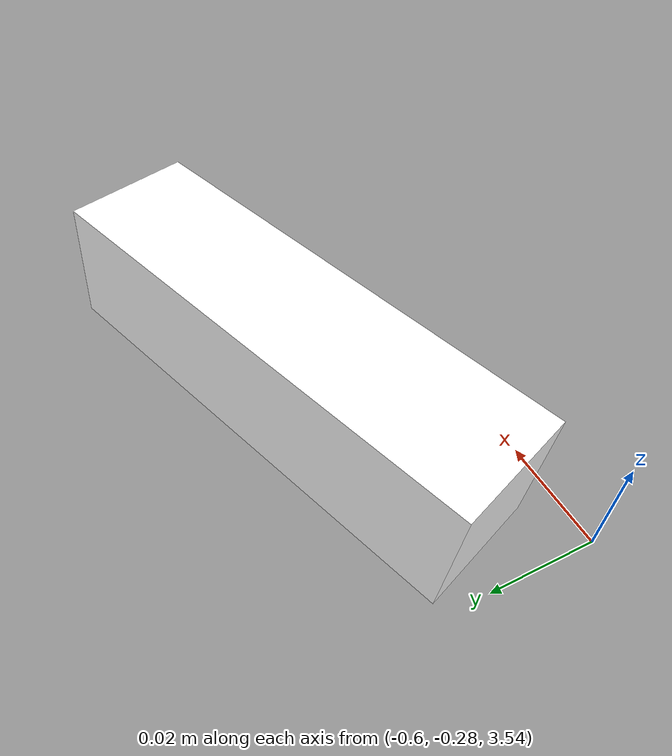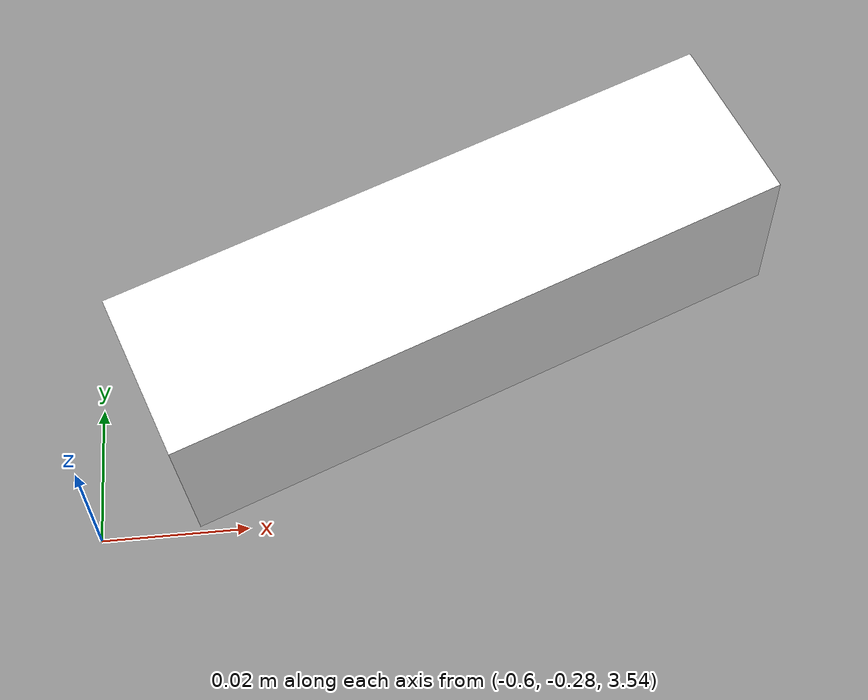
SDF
<?xml version='1.0' encoding='ASCII'?>
<sdf version='1.4'>
  <world name='office_construction'>
    <physics type='ode'>
      <max_step_size>0.003</max_step_size>
      <real_time_factor>1.0</real_time_factor>
      <real_time_update_rate>1000</real_time_update_rate>
      <gravity>0 0 -9.8</gravity>
    </physics>
    <plugin name='gz::sim::systems::Physics' filename='libgz-sim-physics-system.so'/>
    <plugin name='gz::sim::systems::UserCommands' filename='libgz-sim-user-commands-system.so'/>
    <plugin name='gz::sim::systems::SceneBroadcaster' filename='libgz-sim-scene-broadcaster-system.so'/>
    <plugin name="gz::sim::systems::Sensors" filename="libgz-sim-sensors-system.so">
      <render_engine>ogre2</render_engine>
    </plugin>
    <plugin name="gz::sim::systems::Imu" filename="libgz-sim-imu-system.so"/>
    <plugin name="gz::sim::systems::NavSat" filename="libgz-sim-navsat-system.so"/>
    <plugin name="gz::sim::systems::ForceTorque" filename="libgz-sim-forcetorque-system.so"/>

    <scene>
      <ambient>1 1 1 1</ambient>
      <background>0.3 0.7 0.9 1</background>
      <shadows>0</shadows>
      <grid>false</grid>
      <sky>
        <clouds>
          <speed>12</speed>
        </clouds>
      </sky>
      <shadows>1</shadows>
    </scene>
    <light name='sun' type='directional'>
      <cast_shadows>1</cast_shadows>
      <pose>0 0 10 0 -0 0</pose>
      <diffuse>1.0 1.0 1.0 1</diffuse>
      <specular>0.2 0.2 0.2 1</specular>
      <attenuation>
        <range>1000</range>
        <constant>0.9</constant>
        <linear>0.01</linear>
        <quadratic>0.001</quadratic>
      </attenuation>
      <direction>-0.5 0.5 -1.0</direction>
    </light>

    <!-- Origin placed somewhere near Clearpath's office in Waterloo, ON, Canada -->
    <spherical_coordinates>
      <surface_model>EARTH_WGS84</surface_model>
      <latitude_deg>43.500720</latitude_deg>
      <longitude_deg>-80.546793</longitude_deg>
      <elevation>329</elevation>
      <heading_deg>0</heading_deg>
    </spherical_coordinates>

    <model name='ground_plane'>
      <pose>0 0 0 0 0 0</pose>
      <static>true</static>
      <link name='ground_link'>
        <collision name='ground_collision'>
          <geometry>
            <plane>
              <normal>0 0 1</normal>
              <size>1000 1000</size>
            </plane>
          </geometry>
          <surface>
            <friction>
              <ode>
                <mu>2.0</mu>
                <mu2>2.0</mu2>
              </ode>
            </friction>
          </surface>
        </collision>
        <visual name='ground_visual'>
          <geometry>
            <plane>
              <normal>0 0 1</normal>
              <size>1000 1000</size>
            </plane>
          </geometry>
        </visual>
      </link>
    </model>

    <model name="fixed_realsense_d435">
      <static>true</static>

      <!-- world pose: x y z roll pitch yaw -->
      <!-- pitch = -pi/2 makes it look down -->
      <!-- yaw rotates the top-down view to match your robot axes -->
      <pose>-0.55 -0.25 3.55 0.04 -0.06 0.35</pose>

      <link name="camera_link">
        <inertial>
          <mass>0.1</mass>
          <inertia>
            <ixx>1e-4</ixx>
            <iyy>1e-4</iyy>
            <izz>1e-4</izz>
            <ixy>0</ixy>
            <ixz>0</ixz>
            <iyz>0</iyz>
          </inertia>
        </inertial>

        <visual name="body_visual">
          <geometry>
            <box>
              <size>0.09 0.025 0.025</size>
            </box>
          </geometry>
          <material>
            <ambient>1 1 1 1</ambient>
            <diffuse>1 1 1 1</diffuse>
            <specular>0 0 0 1</specular>
          </material>
        </visual>
      </link>

      <!-- optical link so axes match ROS optical convention -->
      <link name="camera_optical_link">
        <!-- rotation: roll=-pi/2 yaw=-pi/2 -->
        <pose relative_to="camera_link">0 0 0 0 1.57075 0</pose>

        <sensor name="realsense_rgbd" type="rgbd_camera">
          <always_on>true</always_on>
          <update_rate>30</update_rate>
          <visualize>true</visualize>

          <topic>/a200_0000/camera_0</topic>

          <camera name="color">
            <horizontal_fov>1.20</horizontal_fov>
            <image>
              <width>640</width>
              <height>480</height>
              <format>R8G8B8</format>
            </image>
            <clip>
              <near>0.1</near>
              <far>25</far>
            </clip>
          </camera>

          <depth_camera name="depth">
            <image>
              <width>640</width>
              <height>480</height>
              <format>R_FLOAT32</format>
            </image>
            <clip>
              <near>0.1</near>
              <far>10</far>
            </clip>
          </depth_camera>
        </sensor>
      </link>

      <joint name="camera_optical_fixed" type="fixed">
        <parent>camera_link</parent>
        <child>camera_optical_link</child>
      </joint>
    </model>
  </world>
</sdf>
